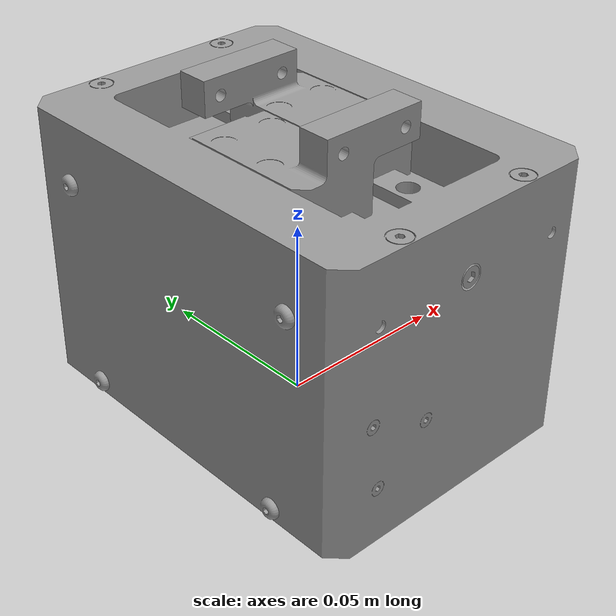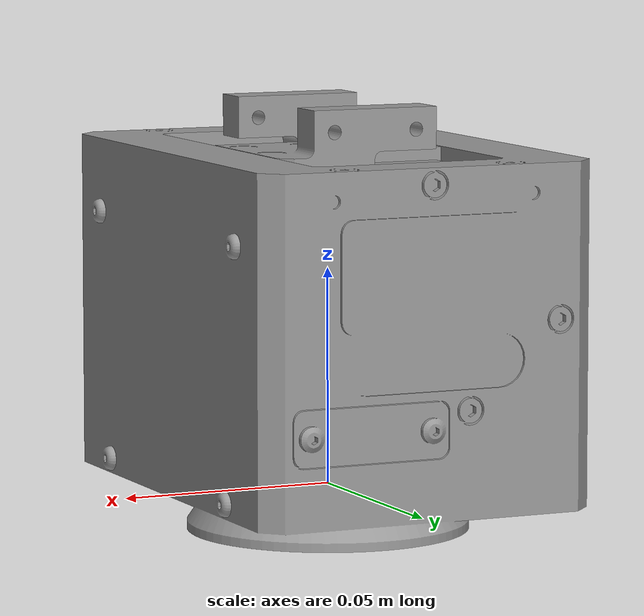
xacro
<?xml version="1.0"?>
<robot name="pg70"
  xmlns:xacro="http://www.ros.org/wiki/xacro">
  <!-- BASE -->
  <link name ="world"/>
  <!-- Import Axis -->
  <xacro:include filename="$(find aurora_min_demo)/description/urdf/pg70.urdf.xacro"/>
  <!--Axis Position-->
  <xacro:schunk_pg70 prefix="pg70" parent="world">
    <origin xyz="0 0 0" rpy="${pi/2.} 0 ${pi/2.}"/>
  </xacro:schunk_pg70>
</robot>

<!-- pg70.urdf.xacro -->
<robot xmlns:xacro="http://ros.org/wiki/xacro">
    <!-- Macros definitions -->
    <xacro:macro name="schunk_pg70" params="prefix parent *origin">
        <!-- Schunk PG70 plus -->
        <link name="${prefix}_base_link">
            <visual>
                <origin xyz="0 0 0" rpy="0 0 0"/>
                <geometry>
                    <mesh filename="package://schunk_pg70/meshes/pg70.dae"/>
                </geometry>
            </visual>

        <collision>
        <geometry>
          <mesh filename="package://schunk_pg70/meshes/pg70.dae" />
        </geometry>
        <material name="blue"/>
        </collision>
        </link>

        <gazebo reference="${prefix}_base_link">
            <material>Gazebo/Gray</material>
        </gazebo>

        <joint name="${prefix}base_link_joint" type="fixed">
            <parent link="${parent}" />
            <child link="${prefix}_base_link" />
            <xacro:insert_block name="origin"/>
        </joint>

        <!-- Schunk PG70 plus gripper jaws -->
        <link name="${prefix}_jaw_b">
            <visual>
                <origin xyz="0 0 0" rpy="0 0 0"/>
                <geometry>
                  <mesh filename="package://aurora_min_demo/description/meshes/pg70_jaw.dae"/>
                </geometry>
            </visual>

        <collision>
        <geometry>
          <mesh filename="package://aurora_min_demo/description/meshes/pg70_jaw.dae" />
        </geometry>
        <material name="blue"/>
        </collision>
        </link>

        <gazebo reference="${prefix}_jaw_b">
            <material>Gazebo/Gray</material>
        </gazebo>

        <joint name="${prefix}_jaw_b_joint" type="prismatic">
            <parent link="${prefix}_base_link" />
            <child link="${prefix}_jaw_b" />
            <origin xyz="0.0 0.0885 0" rpy="0 0 0" />
            <limit effort="100" lower="0.0005" upper="0.03275" velocity="2.0"/>
            <axis xyz="1 0 0" />
        </joint>
        <link name="${prefix}_jaw_a">
            <visual>
                <origin xyz="0 0 0" rpy="0 0 0"/>
                <geometry>
                  <mesh filename="package://aurora_min_demo/description/meshes/pg70_jaw.dae"/>
                </geometry>
            </visual>
        <collision>
        <geometry>
          <mesh filename="package://aurora_min_demo/description/meshes/pg70_jaw.dae" />
        </geometry>
        <material name="blue"/>
        </collision>
        </link>

        <gazebo reference="${prefix}_jaw_a">
            <material>Gazebo/Gray</material>
        </gazebo>

        <joint name="${prefix}_jaw_a_joint" type="prismatic">
            <mimic joint="${prefix}_jaw_b_joint" multiplier="1" offset="0"/>
            <parent link="${prefix}_base_link" />
            <child link="${prefix}_jaw_a" />
            <origin xyz="0 0.0885 0" rpy="0 ${pi} 0 "/>
            <limit effort="100" lower="0.0005" upper="0.03275" velocity="2.0"/>
            <axis xyz="1 0 0" />
        </joint>
    </xacro:macro>    <!-- end_effector -->
</robot>
